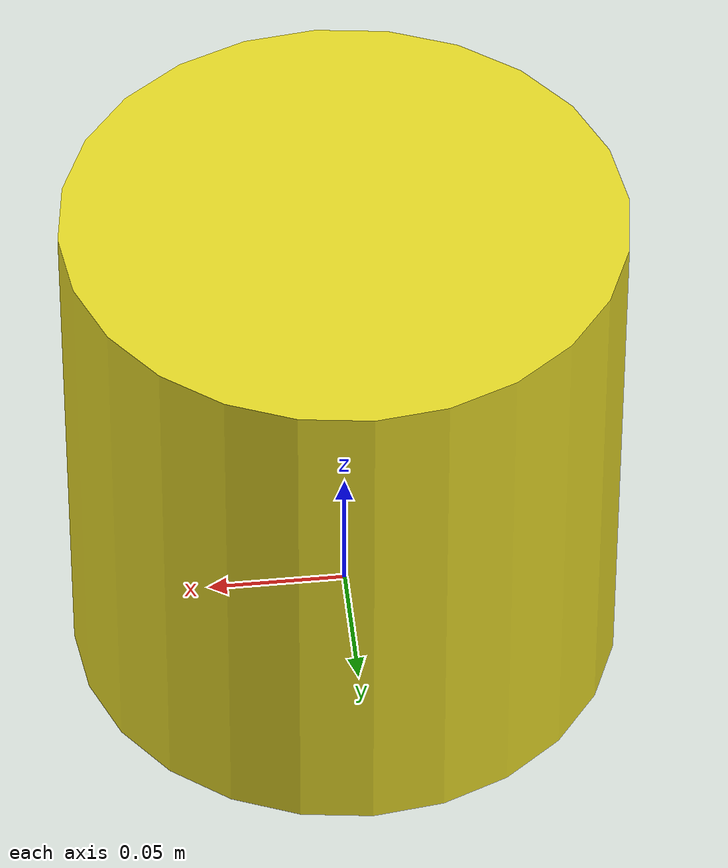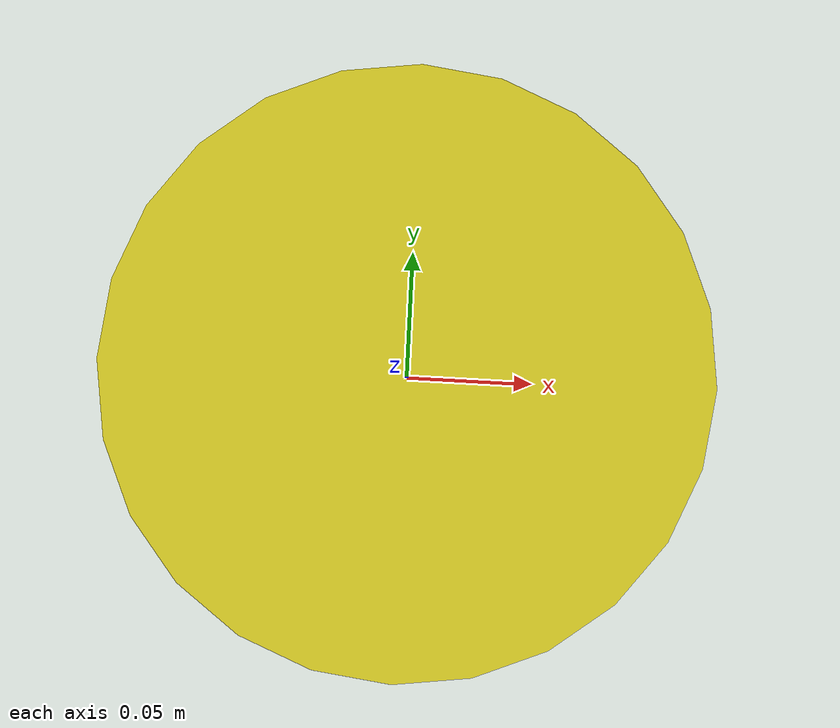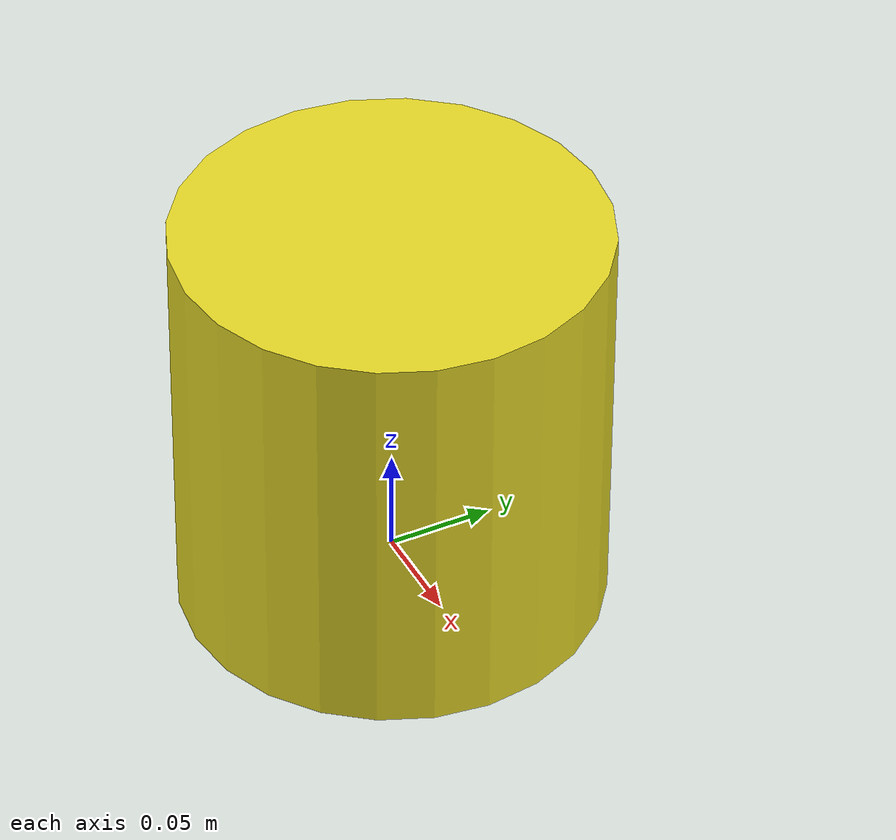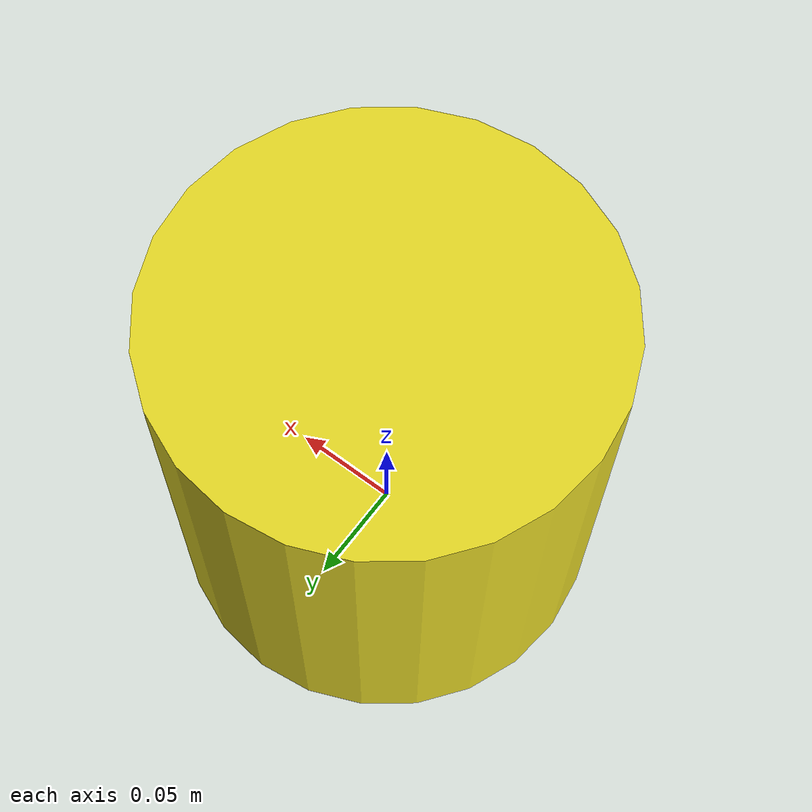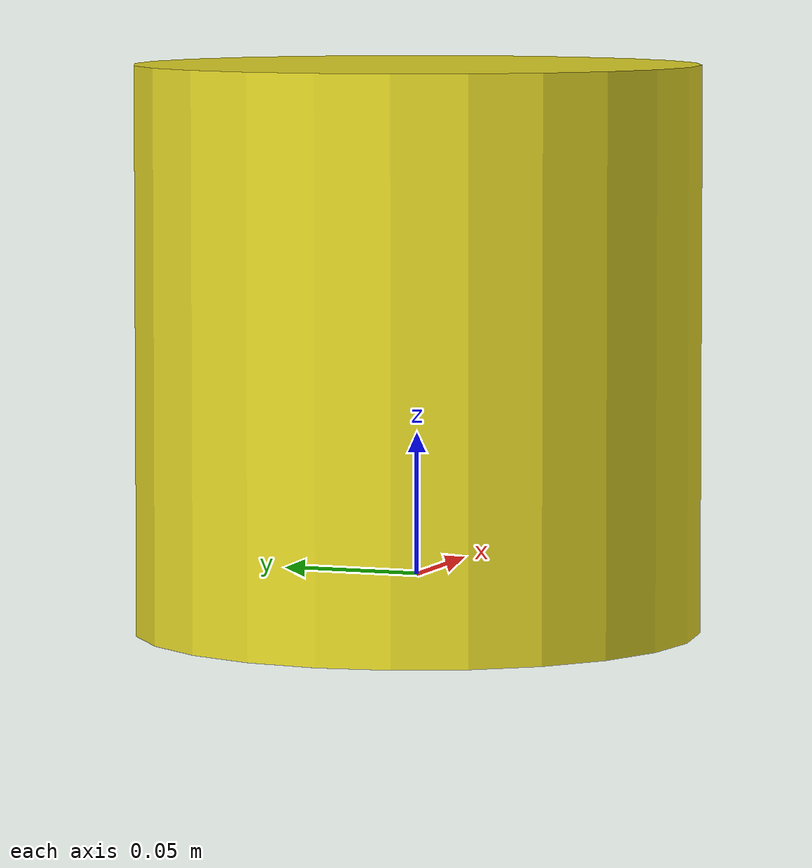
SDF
<?xml version='1.0'?>
<sdf version="1.4">
<model name="Yelow cylinder object">
  <pose>0 0 0.08 0 0 0</pose>
    <link name="grab_here">
      <inertial>
        <mass>0.5</mass>
        <inertia>
          <ixx>0.083</ixx>
          <ixy>0.0</ixy>
          <ixz>0.0</ixz>
          <iyy>0.083</iyy>
          <iyz>0.0</iyz>
          <izz>0.083</izz>
        </inertia>
      </inertial>
      <collision name="collision">
        <geometry>
          <cylinder>
            <radius>0.10</radius>
            <length>0.2</length>
          </cylinder>
        </geometry>
      </collision>
      <visual name="visual">
        <geometry>
          <cylinder>
            <radius>0.10</radius>
            <length>0.2</length>
          </cylinder>
        </geometry>
        <material>
        	<script>
              <uri>file://media/materials/scripts/gazebo.material</uri>
              <name>Gazebo/Yellow</name>
            </script>
        </material>
      </visual>
    </link>
  </model>
</sdf>
